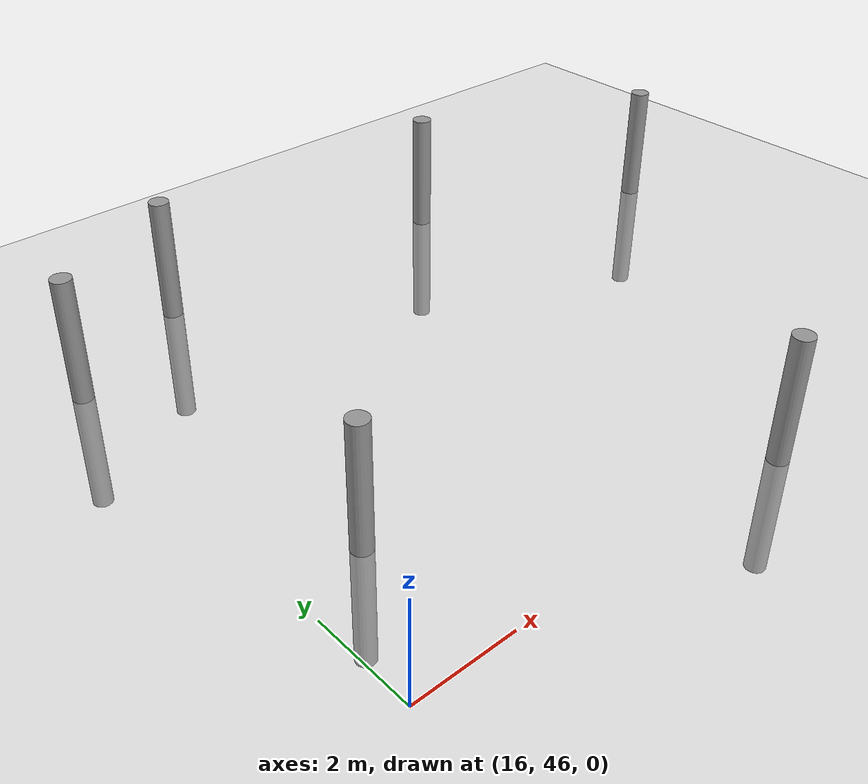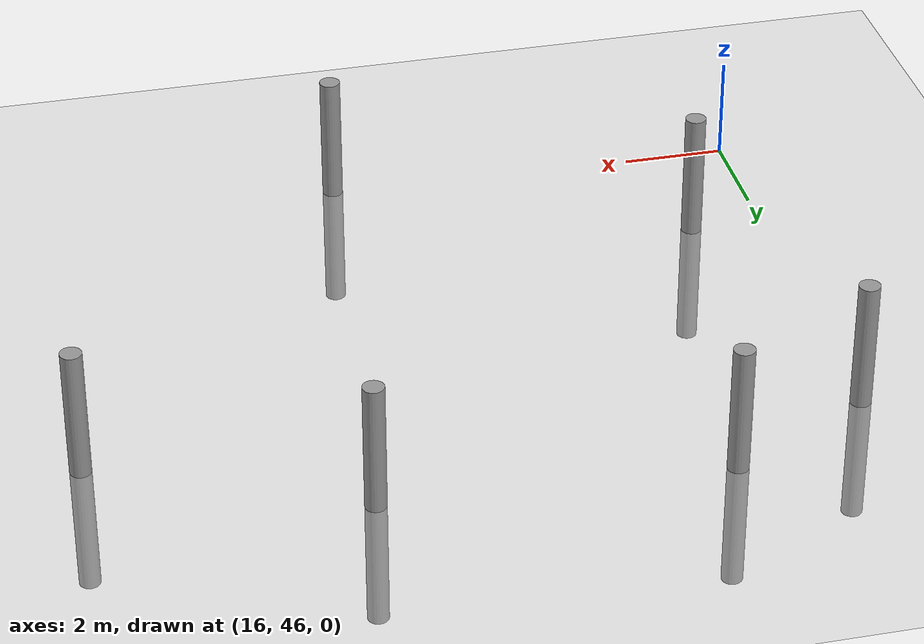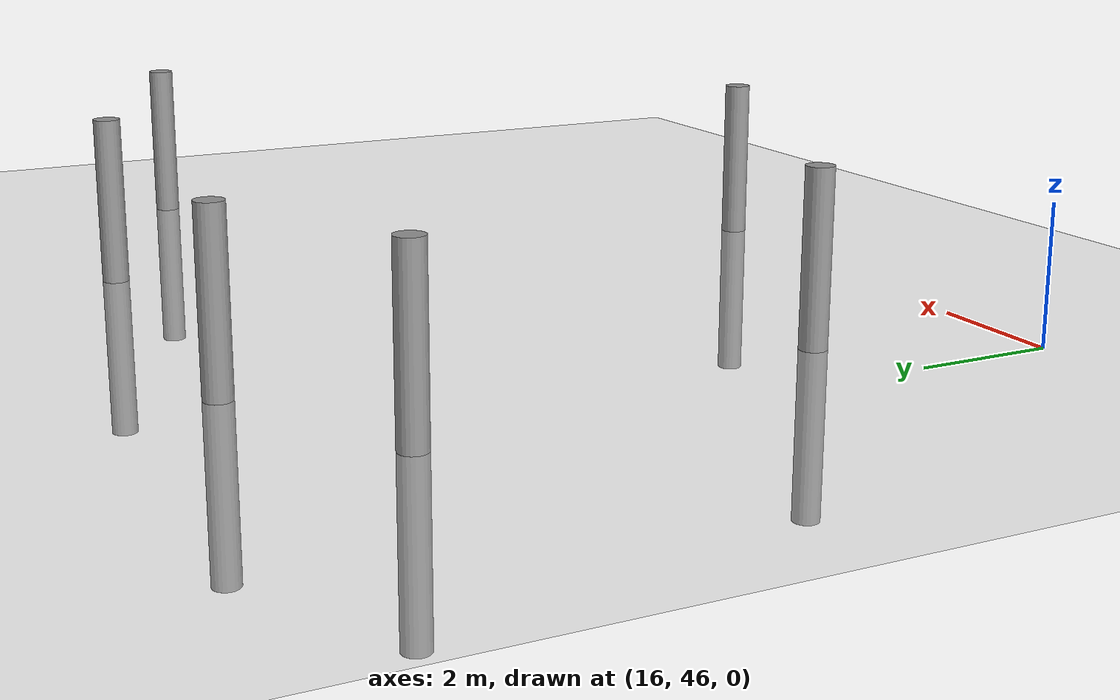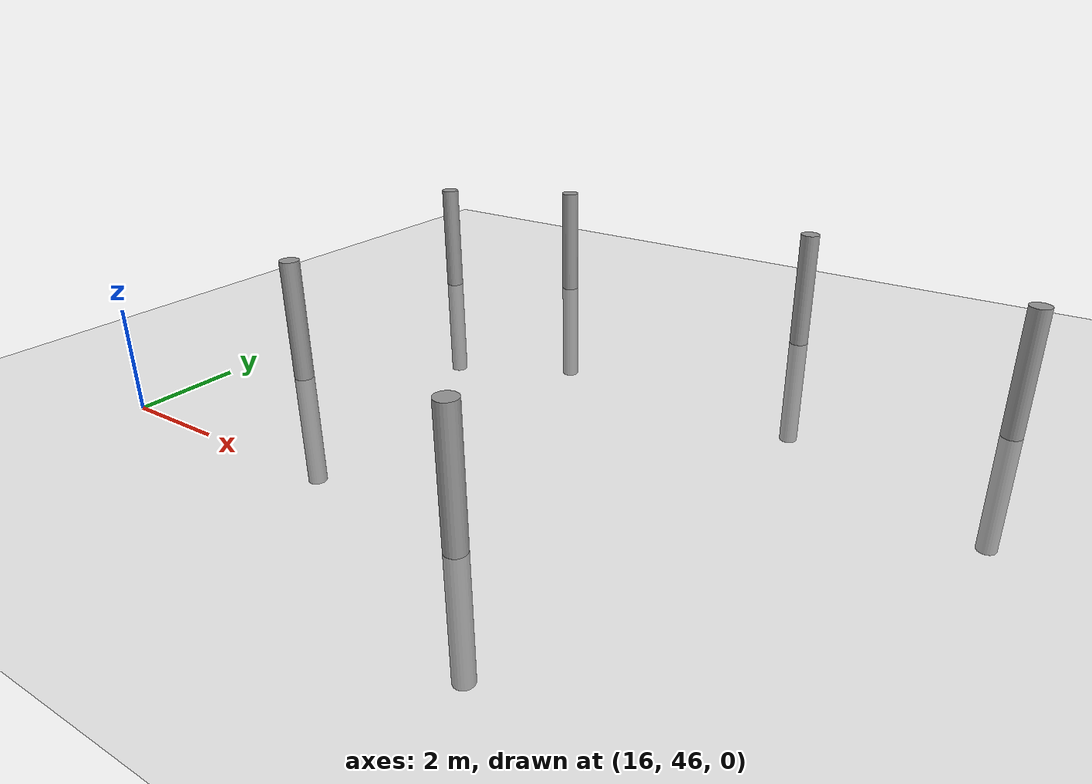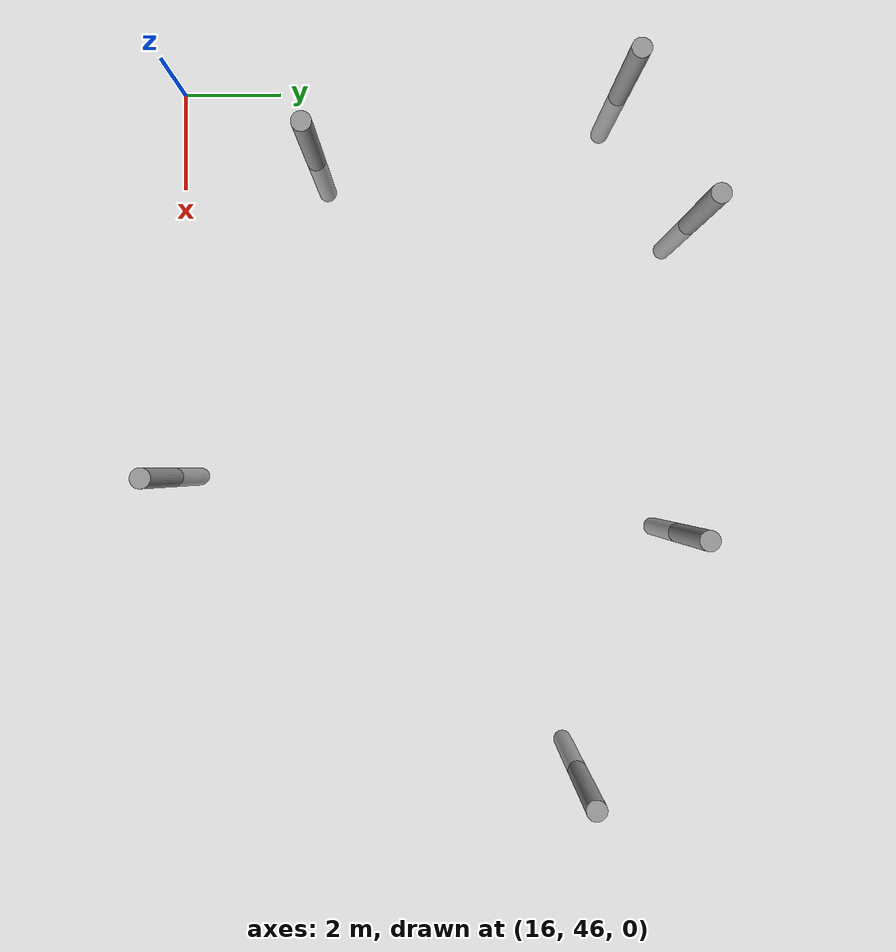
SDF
<sdf version="1.6">
 <world name="default">
  <model name="ground_plane">
   <static>1</static>
   <link name="link">
    <collision name="collision">
     <geometry><plane><normal>0 0 1</normal><size>100 100</size></plane></geometry>
     <surface><friction><ode><mu>100</mu><mu2>50</mu2></ode></friction></surface>
    </collision>
    <visual name="visual">
     <cast_shadows>0</cast_shadows>
     <geometry><plane><normal>0 0 1</normal><size>100 100</size></plane></geometry>
     <material>
      <script><uri>file://media/materials/scripts/gazebo.material</uri><name>Gazebo/Grey</name></script>
     </material>
    </visual>
   </link>
  </model>
  <model name="empty_pillars_1">
   <model name="empty_pillar_clone_12">
    <link name="link">
     <inertial>
      <mass>1</mass>
      <inertia><ixx>0.145833</ixx><ixy>0</ixy><ixz>0</ixz><iyy>0.145833</iyy><iyz>0</iyz><izz>0.125</izz></inertia>
     </inertial>
     <visual name="visual">
      <geometry><cylinder><radius>0.2</radius><length>5</length></cylinder></geometry>
      <material>
       <script><name>Gazebo/Grey</name><uri>file://media/materials/scripts/gazebo.material</uri></script>
       <shader type="vertex"><normal_map>__default__</normal_map></shader>
       <ambient>0.3 0.3 0.3 1</ambient>
       <diffuse>0.7 0.7 0.7 1</diffuse>
       <specular>0.01 0.01 0.01 1</specular>
       <emissive>0 0 0 1</emissive>
      </material>
     </visual>
     <collision name="collision">
      <geometry><cylinder><radius>0.05</radius><length>5</length></cylinder></geometry>
      <surface>
       <friction>
        <ode><mu>1</mu><mu2>1</mu2><fdir1>0 0 0</fdir1><slip1>0</slip1><slip2>0</slip2></ode>
        <torsional>
         <coefficient>1</coefficient>
         <patch_radius>0</patch_radius>
         <surface_radius>0</surface_radius>
         <use_patch_radius>1</use_patch_radius>
         <ode><slip>0</slip></ode>
        </torsional>
       </friction>
       <bounce><restitution_coefficient>0</restitution_coefficient><threshold>1e+06</threshold></bounce>
       <contact>
        <collide_without_contact>0</collide_without_contact>
        <collide_without_contact_bitmask>1</collide_without_contact_bitmask>
        <collide_bitmask>1</collide_bitmask>
        <ode>
         <soft_cfm>0</soft_cfm>
         <soft_erp>0.2</soft_erp>
         <kp>1e+13</kp>
         <kd>1</kd>
         <max_vel>0.01</max_vel>
         <min_depth>0</min_depth>
        </ode>
        <bullet>
         <split_impulse>1</split_impulse>
         <split_impulse_penetration_threshold>-0.01</split_impulse_penetration_threshold>
         <soft_cfm>0</soft_cfm>
         <soft_erp>0.2</soft_erp>
         <kp>1e+13</kp>
         <kd>1</kd>
        </bullet>
       </contact>
      </surface>
     </collision>
    </link>
    <static>0</static>
    <pose>-4.01464 -20.8403 0 0 -0 0</pose>
   </model>
   <model name="empty_pillar_clone_44">
    <link name="link">
     <inertial>
      <mass>1</mass>
      <inertia><ixx>0.145833</ixx><ixy>0</ixy><ixz>0</ixz><iyy>0.145833</iyy><iyz>0</iyz><izz>0.125</izz></inertia>
     </inertial>
     <visual name="visual">
      <geometry><cylinder><radius>0.2</radius><length>5</length></cylinder></geometry>
      <material>
       <script><name>Gazebo/Grey</name><uri>file://media/materials/scripts/gazebo.material</uri></script>
       <shader type="vertex"><normal_map>__default__</normal_map></shader>
       <ambient>0.3 0.3 0.3 1</ambient>
       <diffuse>0.7 0.7 0.7 1</diffuse>
       <specular>0.01 0.01 0.01 1</specular>
       <emissive>0 0 0 1</emissive>
      </material>
     </visual>
     <collision name="collision">
      <geometry><cylinder><radius>0.05</radius><length>5</length></cylinder></geometry>
      <surface>
       <friction>
        <ode><mu>1</mu><mu2>1</mu2><fdir1>0 0 0</fdir1><slip1>0</slip1><slip2>0</slip2></ode>
        <torsional>
         <coefficient>1</coefficient>
         <patch_radius>0</patch_radius>
         <surface_radius>0</surface_radius>
         <use_patch_radius>1</use_patch_radius>
         <ode><slip>0</slip></ode>
        </torsional>
       </friction>
       <bounce><restitution_coefficient>0</restitution_coefficient><threshold>1e+06</threshold></bounce>
       <contact>
        <collide_without_contact>0</collide_without_contact>
        <collide_without_contact_bitmask>1</collide_without_contact_bitmask>
        <collide_bitmask>1</collide_bitmask>
        <ode>
         <soft_cfm>0</soft_cfm>
         <soft_erp>0.2</soft_erp>
         <kp>1e+13</kp>
         <kd>1</kd>
         <max_vel>0.01</max_vel>
         <min_depth>0</min_depth>
        </ode>
        <bullet>
         <split_impulse>1</split_impulse>
         <split_impulse_penetration_threshold>-0.01</split_impulse_penetration_threshold>
         <soft_cfm>0</soft_cfm>
         <soft_erp>0.2</soft_erp>
         <kp>1e+13</kp>
         <kd>1</kd>
        </bullet>
       </contact>
      </surface>
     </collision>
    </link>
    <static>0</static>
    <pose>-6.78285 -22.2729 0 0 -0 0</pose>
   </model>
   <model name="empty_pillar_clone_46">
    <link name="link">
     <inertial>
      <mass>1</mass>
      <inertia><ixx>0.145833</ixx><ixy>0</ixy><ixz>0</ixz><iyy>0.145833</iyy><iyz>0</iyz><izz>0.125</izz></inertia>
     </inertial>
     <visual name="visual">
      <geometry><cylinder><radius>0.2</radius><length>5</length></cylinder></geometry>
      <material>
       <script><name>Gazebo/Grey</name><uri>file://media/materials/scripts/gazebo.material</uri></script>
       <shader type="vertex"><normal_map>__default__</normal_map></shader>
       <ambient>0.3 0.3 0.3 1</ambient>
       <diffuse>0.7 0.7 0.7 1</diffuse>
       <specular>0.01 0.01 0.01 1</specular>
       <emissive>0 0 0 1</emissive>
      </material>
     </visual>
     <collision name="collision">
      <geometry><cylinder><radius>0.05</radius><length>5</length></cylinder></geometry>
      <surface>
       <friction>
        <ode><mu>1</mu><mu2>1</mu2><fdir1>0 0 0</fdir1><slip1>0</slip1><slip2>0</slip2></ode>
        <torsional>
         <coefficient>1</coefficient>
         <patch_radius>0</patch_radius>
         <surface_radius>0</surface_radius>
         <use_patch_radius>1</use_patch_radius>
         <ode><slip>0</slip></ode>
        </torsional>
       </friction>
       <bounce><restitution_coefficient>0</restitution_coefficient><threshold>1e+06</threshold></bounce>
       <contact>
        <collide_without_contact>0</collide_without_contact>
        <collide_without_contact_bitmask>1</collide_without_contact_bitmask>
        <collide_bitmask>1</collide_bitmask>
        <ode>
         <soft_cfm>0</soft_cfm>
         <soft_erp>0.2</soft_erp>
         <kp>1e+13</kp>
         <kd>1</kd>
         <max_vel>0.01</max_vel>
         <min_depth>0</min_depth>
        </ode>
        <bullet>
         <split_impulse>1</split_impulse>
         <split_impulse_penetration_threshold>-0.01</split_impulse_penetration_threshold>
         <soft_cfm>0</soft_cfm>
         <soft_erp>0.2</soft_erp>
         <kp>1e+13</kp>
         <kd>1</kd>
        </bullet>
       </contact>
      </surface>
     </collision>
    </link>
    <static>0</static>
    <pose>2.45033 -21.185 0 0 -0 0</pose>
   </model>
   <model name="empty_pillar_clone_53">
    <link name="link">
     <inertial>
      <mass>1</mass>
      <inertia><ixx>0.145833</ixx><ixy>0</ixy><ixz>0</ixz><iyy>0.145833</iyy><iyz>0</iyz><izz>0.125</izz></inertia>
     </inertial>
     <visual name="visual">
      <geometry><cylinder><radius>0.2</radius><length>5</length></cylinder></geometry>
      <material>
       <script><name>Gazebo/Grey</name><uri>file://media/materials/scripts/gazebo.material</uri></script>
       <shader type="vertex"><normal_map>__default__</normal_map></shader>
       <ambient>0.3 0.3 0.3 1</ambient>
       <diffuse>0.7 0.7 0.7 1</diffuse>
       <specular>0.01 0.01 0.01 1</specular>
       <emissive>0 0 0 1</emissive>
      </material>
     </visual>
     <collision name="collision">
      <geometry><cylinder><radius>0.05</radius><length>5</length></cylinder></geometry>
      <surface>
       <friction>
        <ode><mu>1</mu><mu2>1</mu2><fdir1>0 0 0</fdir1><slip1>0</slip1><slip2>0</slip2></ode>
        <torsional>
         <coefficient>1</coefficient>
         <patch_radius>0</patch_radius>
         <surface_radius>0</surface_radius>
         <use_patch_radius>1</use_patch_radius>
         <ode><slip>0</slip></ode>
        </torsional>
       </friction>
       <bounce><restitution_coefficient>0</restitution_coefficient><threshold>1e+06</threshold></bounce>
       <contact>
        <collide_without_contact>0</collide_without_contact>
        <collide_without_contact_bitmask>1</collide_without_contact_bitmask>
        <collide_bitmask>1</collide_bitmask>
        <ode>
         <soft_cfm>0</soft_cfm>
         <soft_erp>0.2</soft_erp>
         <kp>1e+13</kp>
         <kd>1</kd>
         <max_vel>0.01</max_vel>
         <min_depth>0</min_depth>
        </ode>
        <bullet>
         <split_impulse>1</split_impulse>
         <split_impulse_penetration_threshold>-0.01</split_impulse_penetration_threshold>
         <soft_cfm>0</soft_cfm>
         <soft_erp>0.2</soft_erp>
         <kp>1e+13</kp>
         <kd>1</kd>
        </bullet>
       </contact>
      </surface>
     </collision>
    </link>
    <static>0</static>
    <pose>7.32522 -23.3523 0 0 -0 0</pose>
   </model>
   <static>0</static>
   <pose>22.8728 77.4317 0 0 -0 0</pose>
  </model>
  <model name="empty_pillars_4">
   <model name="empty_pillar_clone_23">
    <link name="link">
     <inertial>
      <mass>1</mass>
      <inertia><ixx>0.145833</ixx><ixy>0</ixy><ixz>0</ixz><iyy>0.145833</iyy><iyz>0</iyz><izz>0.125</izz></inertia>
     </inertial>
     <visual name="visual">
      <geometry><cylinder><radius>0.2</radius><length>5</length></cylinder></geometry>
      <material>
       <script><name>Gazebo/Grey</name><uri>file://media/materials/scripts/gazebo.material</uri></script>
       <shader type="vertex"><normal_map>__default__</normal_map></shader>
       <ambient>0.3 0.3 0.3 1</ambient>
       <diffuse>0.7 0.7 0.7 1</diffuse>
       <specular>0.01 0.01 0.01 1</specular>
       <emissive>0 0 0 1</emissive>
      </material>
     </visual>
     <collision name="collision">
      <geometry><cylinder><radius>0.05</radius><length>5</length></cylinder></geometry>
      <surface>
       <friction>
        <ode><mu>1</mu><mu2>1</mu2><fdir1>0 0 0</fdir1><slip1>0</slip1><slip2>0</slip2></ode>
        <torsional>
         <coefficient>1</coefficient>
         <patch_radius>0</patch_radius>
         <surface_radius>0</surface_radius>
         <use_patch_radius>1</use_patch_radius>
         <ode><slip>0</slip></ode>
        </torsional>
       </friction>
       <bounce><restitution_coefficient>0</restitution_coefficient><threshold>1e+06</threshold></bounce>
       <contact>
        <collide_without_contact>0</collide_without_contact>
        <collide_without_contact_bitmask>1</collide_without_contact_bitmask>
        <collide_bitmask>1</collide_bitmask>
        <ode>
         <soft_cfm>0</soft_cfm>
         <soft_erp>0.2</soft_erp>
         <kp>1e+13</kp>
         <kd>1</kd>
         <max_vel>0.01</max_vel>
         <min_depth>0</min_depth>
        </ode>
        <bullet>
         <split_impulse>1</split_impulse>
         <split_impulse_penetration_threshold>-0.01</split_impulse_penetration_threshold>
         <soft_cfm>0</soft_cfm>
         <soft_erp>0.2</soft_erp>
         <kp>1e+13</kp>
         <kd>1</kd>
        </bullet>
       </contact>
      </surface>
     </collision>
    </link>
    <static>0</static>
    <pose>-1.21984 18.1273 0 0 -0 0</pose>
   </model>
   <model name="empty_pillar_clone_25">
    <link name="link">
     <inertial>
      <mass>1</mass>
      <inertia><ixx>0.145833</ixx><ixy>0</ixy><ixz>0</ixz><iyy>0.145833</iyy><iyz>0</iyz><izz>0.125</izz></inertia>
     </inertial>
     <visual name="visual">
      <geometry><cylinder><radius>0.2</radius><length>5</length></cylinder></geometry>
      <material>
       <script><name>Gazebo/Grey</name><uri>file://media/materials/scripts/gazebo.material</uri></script>
       <shader type="vertex"><normal_map>__default__</normal_map></shader>
       <ambient>0.3 0.3 0.3 1</ambient>
       <diffuse>0.7 0.7 0.7 1</diffuse>
       <specular>0.01 0.01 0.01 1</specular>
       <emissive>0 0 0 1</emissive>
      </material>
     </visual>
     <collision name="collision">
      <geometry><cylinder><radius>0.05</radius><length>5</length></cylinder></geometry>
      <surface>
       <friction>
        <ode><mu>1</mu><mu2>1</mu2><fdir1>0 0 0</fdir1><slip1>0</slip1><slip2>0</slip2></ode>
        <torsional>
         <coefficient>1</coefficient>
         <patch_radius>0</patch_radius>
         <surface_radius>0</surface_radius>
         <use_patch_radius>1</use_patch_radius>
         <ode><slip>0</slip></ode>
        </torsional>
       </friction>
       <bounce><restitution_coefficient>0</restitution_coefficient><threshold>1e+06</threshold></bounce>
       <contact>
        <collide_without_contact>0</collide_without_contact>
        <collide_without_contact_bitmask>1</collide_without_contact_bitmask>
        <collide_bitmask>1</collide_bitmask>
        <ode>
         <soft_cfm>0</soft_cfm>
         <soft_erp>0.2</soft_erp>
         <kp>1e+13</kp>
         <kd>1</kd>
         <max_vel>0.01</max_vel>
         <min_depth>0</min_depth>
        </ode>
        <bullet>
         <split_impulse>1</split_impulse>
         <split_impulse_penetration_threshold>-0.01</split_impulse_penetration_threshold>
         <soft_cfm>0</soft_cfm>
         <soft_erp>0.2</soft_erp>
         <kp>1e+13</kp>
         <kd>1</kd>
        </bullet>
       </contact>
      </surface>
     </collision>
    </link>
    <static>0</static>
    <pose>-7.86239 21.1314 0 0 -0 0</pose>
   </model>
   <static>0</static>
   <pose>25.2837 27.6164 0 0 -0 0</pose>
  </model>
 </world>
</sdf>
